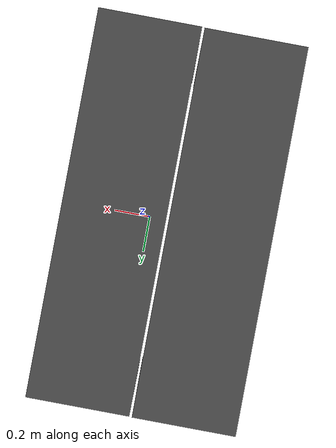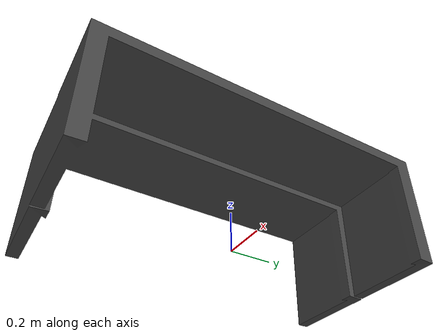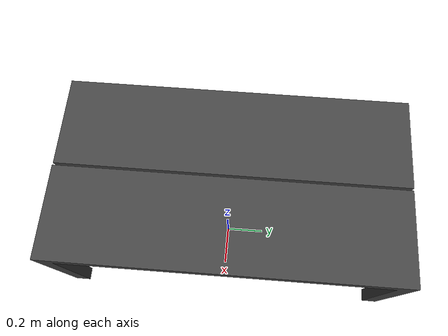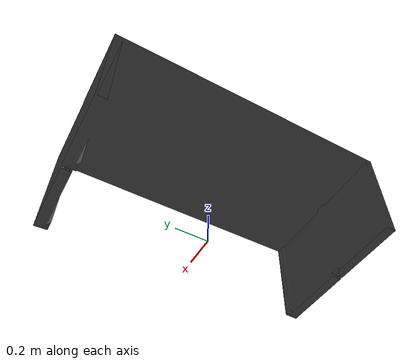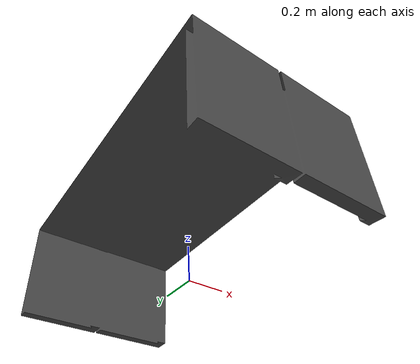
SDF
<?xml version='1.0'?>
<sdf version='1.6'>
  <model name='sofa_maple'>
    <link name='link'>
      <visual name='visual'>
        <pose frame=''>0 0 0 0 -0 0</pose>
        <geometry>
          <mesh>
            <uri>model://mesa/meshes/modelo.dae</uri>
            <scale>1 1 1</scale>
          </mesh>
        </geometry>
     	<material>
          <script>
            <uri>model://mesa/materials/scripts</uri>
            <uri>model://mesa/materials/textures</uri>
            <name>sofa_maple</name>
          </script>
        </material>
        <cast_shadows>1</cast_shadows>
        <transparency>0</transparency>
      </visual>
      <collision name='collision'>
        <laser_retro>1</laser_retro>
        <max_contacts>10</max_contacts>
        <pose frame=''>0 0 0 0 -0 0</pose>
        <geometry>
          <mesh>
            <uri>model://mesa/meshes/modelo.dae</uri>
            <scale>1 1 1</scale>
          </mesh>
        </geometry>
       </collision>
    </link>
    <static>1</static>
  </model>
</sdf>
